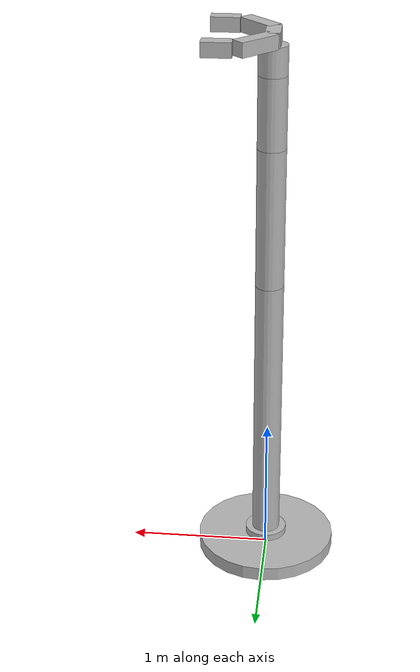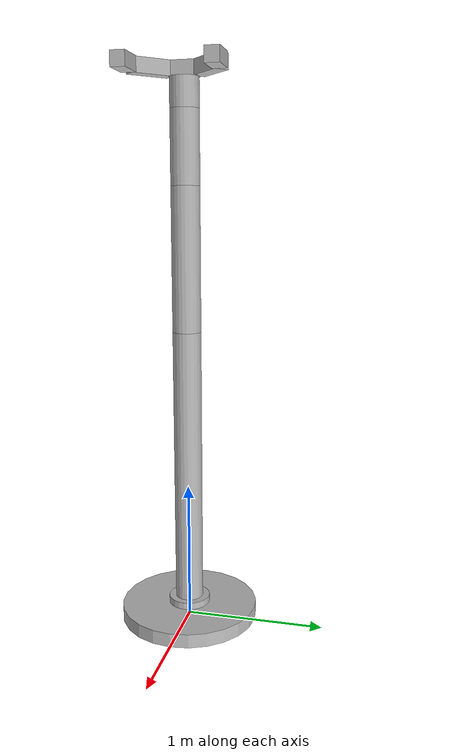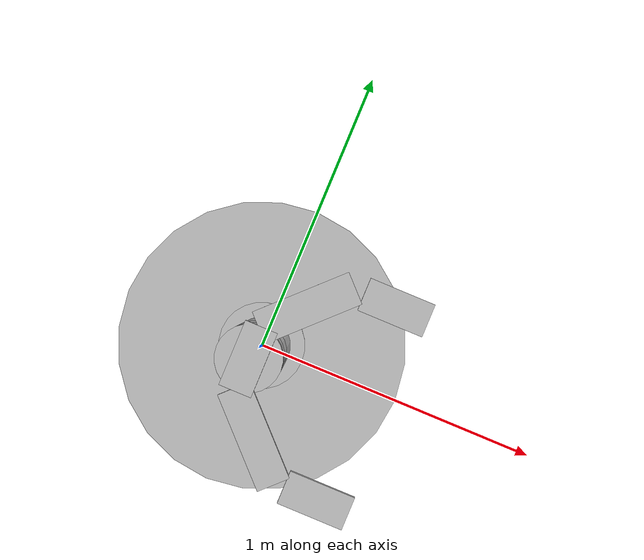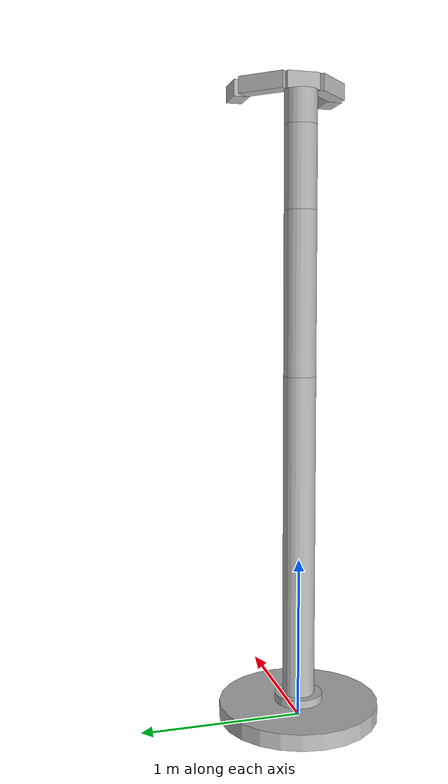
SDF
<?xml version='1.0'?>
<sdf version='1.4'>
  <model name="my_robot">
	<static>false</static>
	 <link name='base'>
      <pose>0 0 0.05 0 0 0</pose>
      <inertial>
        <mass>50.0</mass>
      </inertial>
      <collision name='collision'>
        <geometry>
          <cylinder>
            <radius>0.5</radius>
            <length>0.1</length>
          </cylinder>
        </geometry>
      </collision>

      <visual name='visual'>
        <geometry>
          <cylinder>
            <radius>0.5</radius>
            <length>0.1</length>
          </cylinder>
        </geometry>
      </visual>

   </link>
   <link name='arm_1'>
      <gravity>0</gravity>
      <pose>0 0 .125 0 0 0</pose>
      <inertial>
        <mass>0.1</mass>
      </inertial>
      <collision name='collision'>
        <geometry>
          <cylinder>
            <radius>0.15</radius>
            <length>0.05</length>
          </cylinder>
        </geometry>
        <surface>
              <friction>
                <ode>
                  <mu>0</mu>
                  <mu2>0</mu2>
                  <slip1>1.0</slip1>
                  <slip2>1.0</slip2>
                </ode>
              </friction>
            </surface>
      </collision>

      <visual name='visual'>
        <geometry>
          <cylinder>
            <radius>0.15</radius>
            <length>0.05</length>
          </cylinder>
        </geometry>
      </visual>

   </link>
    <joint type="revolute" name="base_hinge">
        <pose>0 0 0.025 0 0 0</pose>
        <child>arm_1</child>
        <parent>base</parent>
        <axis>
          <xyz>0 0 1</xyz>
          <dynamics>
            <damping>1.0</damping>
            <friction>0.3</friction>
            <limit>
              <lower>-1.0</lower>
              <upper>1.0</upper>
              <effort>40</effort>
              <velocity>1.0</velocity>
            </limit>
          </dynamics>
        </axis>
    </joint>
    <link name='arm_2'>
      <gravity>0</gravity>
      <pose>0 0 1.15 0 0 0</pose>
      <inertial>
        <mass>2.0</mass>
      </inertial>
      <collision name='collision'>
        <geometry>
          <cylinder>
            <radius>0.1</radius>
            <length>2.0</length>
          </cylinder>
        </geometry>
        <surface>
              <friction>
                <ode>
                  <mu>0</mu>
                  <mu2>0</mu2>
                  <slip1>1.0</slip1>
                  <slip2>1.0</slip2>
                </ode>
              </friction>
            </surface>
      </collision>

      <visual name='visual'>
        <geometry>
          <cylinder>
            <radius>0.1</radius>
            <length>2.0</length>
          </cylinder>
        </geometry>
      </visual>

   </link>
   <joint type="revolute" name="arm1_hinge">
        <pose>0 0 -1 0 0 0</pose>
        <child>arm_2</child>
        <parent>arm_1</parent>
        <axis>
          <xyz>1 0 0</xyz>
          <dynamics>
            <damping>1.0</damping>
            <friction>0.3</friction>
            <limit>
              <lower>-1.0</lower>
              <upper>1.0</upper>
              <effort>40</effort>
              <velocity>1.0</velocity>
            </limit>
          </dynamics>
        </axis>
    </joint>
     <link name='arm_3'>
      <gravity>0</gravity>
      <pose>0 0 2.65 0 0 0</pose>
      <inertial>
        <mass>1.0</mass>
      </inertial>
      <collision name='collision'>
        <geometry>
          <cylinder>
            <radius>0.1</radius>
            <length>1.0</length>
          </cylinder>
        </geometry>
        <surface>
              <friction>
                <ode>
                  <mu>0</mu>
                  <mu2>0</mu2>
                  <slip1>1.0</slip1>
                  <slip2>1.0</slip2>
                </ode>
              </friction>
            </surface>
      </collision>

      <visual name='visual'>
        <geometry>
          <cylinder>
            <radius>0.1</radius>
            <length>1.0</length>
          </cylinder>
        </geometry>
      </visual>

   </link>

   <joint type="revolute" name="arm2_hinge">
        <pose>0 0 -0.5 0 0 0</pose>
        <child>arm_3</child>
        <parent>arm_2</parent>
        <axis>
          <xyz>1 0 0</xyz>
          <dynamics>
            <damping>1.0</damping>
            <friction>0.3</friction>
            <limit>
              <lower>-1.0</lower>
              <upper>1.0</upper>
              <effort>40</effort>
              <velocity>1.0</velocity>
            </limit>
          </dynamics>
        </axis>
    </joint>

    <link name='arm_4'>
      <gravity>0</gravity>
      <pose>0 0 3.4 0 0 0</pose>
      <inertial>
        <mass>0.5</mass>
      </inertial>
      <collision name='collision'>
        <geometry>
          <cylinder>
            <radius>0.1</radius>
            <length>0.50</length>
          </cylinder>
        </geometry>
        <surface>
              <friction>
                <ode>
                  <mu>0</mu>
                  <mu2>0</mu2>
                  <slip1>1.0</slip1>
                  <slip2>1.0</slip2>
                </ode>
              </friction>
            </surface>
      </collision>

      <visual name='visual'>
        <geometry>
          <cylinder>
            <radius>0.1</radius>
            <length>0.50</length>
          </cylinder>
        </geometry>
      </visual>

   </link>

   <joint type="revolute" name="arm3_hinge">
        <pose>0 0 -0.25 0 0 0</pose>
        <child>arm_4</child>
        <parent>arm_3</parent>
        <axis>
          <xyz>1 0 0</xyz>
          <dynamics>
            <damping>1.0</damping>
            <friction>0.3</friction>
            <limit>
              <lower>-1.0</lower>
              <upper>1.0</upper>
              <effort>40</effort>
              <velocity>1.0</velocity>
            </limit>
          </dynamics>
        </axis>
    </joint>

    <link name='gripRotation'>
      <gravity>0</gravity>
      <pose>0 0 3.75 0 0 0</pose>
      <inertial>
        <mass>0.5</mass>
      </inertial>
      <collision name='collision'>
        <geometry>
          <cylinder>
            <radius>0.1</radius>
            <length>0.20</length>
          </cylinder>
        </geometry>
        <surface>
              <friction>
                <ode>
                  <mu>0</mu>
                  <mu2>0</mu2>
                  <slip1>1.0</slip1>
                  <slip2>1.0</slip2>
                </ode>
              </friction>
            </surface>
      </collision>

      <visual name='visual'>
        <geometry>
          <cylinder>
            <radius>0.1</radius>
            <length>0.20</length>
          </cylinder>
        </geometry>
      </visual>

   </link>

   <joint type="revolute" name="arm4_hinge">
        <pose>0 0 -0.1 0 0 0</pose>
        <child>gripRotation</child>
        <parent>arm_4</parent>
        <axis>
          <xyz>1 0 0</xyz>
           <limit>
              <lower>-0.5</lower>
              <upper>0.5</upper>
              <effort>1</effort>
          </limit>
          <dynamics>
            <damping>1.0</damping>
            <friction>0.3</friction>
            <limit>
              <lower>-1.0</lower>
              <upper>1.0</upper>
              <effort>40</effort>
              <velocity>1.0</velocity>
            </limit>
          </dynamics>
        </axis>
    </joint>

    <link name="palm">
            <gravity>0</gravity>
            <pose>0.0 0.0 3.9 0 0 0</pose>
            <inertial>
                <inertia>
                    <ixx>0.01</ixx>
                    <ixy>0</ixy>
                    <ixz>0</ixz>
                    <iyy>0.01</iyy>
                    <iyz>0</iyz>
                    <izz>0.01</izz>
                </inertia>
                <mass>0.5</mass>
            </inertial>
            <collision name="collision">
                <geometry>
                    <box>
                        <size>0.1 0.2 0.1</size>
                    </box>
                </geometry>
            </collision>
            <visual name="visual">
                <geometry>
                    <box>
                        <size>0.1 0.2 0.1</size>
                    </box>
                </geometry>
                <material>
                    <script>Gazebo/Red</script>
                </material>
            </visual>
        </link>
        <joint type="revolute" name="gripRotation_hinge">
        <pose>0 0 -0.05 0 0 0</pose>
        <child>palm</child>
        <parent>gripRotation</parent>
        <axis>
          <xyz>0 0 1</xyz>
          <dynamics>
            <damping>1.0</damping>
            <friction>0.3</friction>
            <limit>
              <lower>-1.0</lower>
              <upper>1.0</upper>
              <effort>40</effort>
              <velocity>1.0</velocity>
            </limit>
          </dynamics>
        </axis>
    </joint>
        <link name="left_finger">
            <gravity>0</gravity>
            <pose>0.1 0.2 3.9 0 0 -0.78539</pose>
            <inertial>
                <inertia>
                    <ixx>0.01</ixx>
                    <ixy>0</ixy>
                    <ixz>0</ixz>
                    <iyy>0.01</iyy>
                    <iyz>0</iyz>
                    <izz>0.01</izz>
                </inertia>
                <mass>0.1</mass>
            </inertial>
            <collision name="collision">
                <geometry>
                    <box>
                        <size>0.1 0.3 0.1</size>
                    </box>
                </geometry>
            </collision>
            <visual name="visual">
                <geometry>
                    <box>
                        <size>0.1 0.3 0.1</size>
                    </box>
                </geometry>
                <material>
                    <script>Gazebo/Blue</script>
                </material>
            </visual>
        </link>
        <joint type="revolute" name="palm_hinge_left">
          <pose>0.05 -0.15 0.05 0 0 0</pose>
          <child>left_finger</child>
          <parent>palm</parent>
          <axis>
           <xyz>0 0 -1</xyz>
           <limit>
              <lower>-0.5</lower>
              <upper>0.5</upper>
              <effort>1</effort>
          </limit>
           <dynamics>
            <damping>1.0</damping>
            <friction>0.3</friction>
            <limit>
              <lower>-1.0</lower>
              <upper>1.0</upper>
              <effort>40</effort>
              <velocity>1.0</velocity>
            </limit>
          </dynamics>
        </axis>
    </joint>
        <link name="left_finger_tip">
            <gravity>0</gravity>
            <pose>0.336 0.3 3.9 0 0 1.5707</pose>
            <inertial>
                <inertia>
                    <ixx>0.01</ixx>
                    <ixy>0</ixy>
                    <ixz>0</ixz>
                    <iyy>0.01</iyy>
                    <iyz>0</iyz>
                    <izz>0.01</izz>
                </inertia>
                <mass>0.1</mass>
            </inertial>
            <collision name="collision">
                <geometry>
                    <box>
                        <size>0.1 0.2 0.1</size>
                    </box>
                </geometry>
            </collision>
            <visual name="visual">
                <geometry>
                    <box>
                        <size>0.1 0.2 0.1</size>
                    </box>
                </geometry>
                <material>
                    <script>Gazebo/Blue</script>
                </material>
            </visual>
        </link>
        <joint type="revolute" name="left_finger_hinge">
          <pose>-0.05 0.1 0.05 0 0 0</pose>
          <child>left_finger_tip</child>
          <parent>left_finger</parent>
          <axis>
           <xyz>0 0 -1</xyz>
           <limit>
              <lower>-0.3</lower>
              <upper>0.3</upper>
              <effort>1</effort>
          </limit>
           <dynamics>
            <damping>1.0</damping>
            <friction>0.3</friction>
            <limit>
              <lower>-1.0</lower>
              <upper>1.0</upper>
              <effort>40</effort>
              <velocity>1.0</velocity>
            </limit>
          </dynamics>
        </axis>
    </joint>
        <link name="right_finger">
            <gravity>0</gravity>
            <pose>0.1 -0.2 3.9 0 0 .78539</pose>
            <inertial>
                <inertia>
                    <ixx>0.01</ixx>
                    <ixy>0</ixy>
                    <ixz>0</ixz>
                    <iyy>0.01</iyy>
                    <iyz>0</iyz>
                    <izz>0.01</izz>
                </inertia>
                <mass>0.1</mass>
            </inertial>
            <collision name="collision">
                <geometry>
                    <box>
                        <size>0.1 0.3 0.1</size>
                    </box>
                </geometry>
            </collision>
            <visual name="visual">
                <geometry>
                    <box>
                        <size>0.1 0.3 0.1</size>
                    </box>
                </geometry>
                <material>
                    <script>Gazebo/Green</script>
                </material>
            </visual>
        </link>
        <joint type="revolute" name="palm_hinge_right">
          <pose>0.05 0.15 0.05 0 0 0</pose>
          <child>right_finger</child>
          <parent>palm</parent>
          <axis>
           <xyz>0 0 1</xyz>
           <limit>
              <lower>-0.5</lower>
              <upper>0.5</upper>
              <effort>1</effort>
          </limit>
           <dynamics>
            <damping>1.0</damping>
            <friction>0.3</friction>
            <limit>
              <lower>-1.0</lower>
              <upper>1.0</upper>
              <effort>40</effort>
              <velocity>1.0</velocity>
            </limit>
          </dynamics>
        </axis>
    </joint>
        <link name="right_finger_tip">
            <gravity>0</gravity>
            <pose>0.336 -0.3 3.9 0 0 1.5707</pose>
            <inertial>
                <inertia>
                    <ixx>0.01</ixx>
                    <ixy>0</ixy>
                    <ixz>0</ixz>
                    <iyy>0.01</iyy>
                    <iyz>0</iyz>
                    <izz>0.01</izz>
                </inertia>
                <mass>0.1</mass>
            </inertial>
            <collision name="collision">
                <geometry>
                    <box>
                        <size>0.1 0.2 0.1</size>
                    </box>
                </geometry>
            </collision>
            <visual name="visual">
                <geometry>
                    <box>
                        <size>0.1 0.2 0.1</size>
                    </box>
                </geometry>
                <material>
                    <script>Gazebo/Green</script>
                </material>
            </visual>
        </link>
        <joint type="revolute" name="right_finger_hinge">
          <pose>0.05 0.1 0.05 0 0 0</pose>
          <child>right_finger_tip</child>
          <parent>right_finger</parent>
          <axis>
           <xyz>0 0 1</xyz>
           <limit>
              <lower>-0.3</lower>
              <upper>0.3</upper>
              <effort>1</effort>
          </limit>
           <dynamics>
            <damping>1.0</damping>
            <friction>0.3</friction>
            <limit>
              <lower>-1.0</lower>
              <upper>1.0</upper>
              <effort>40</effort>
              <velocity>1.0</velocity>
            </limit>
          </dynamics>
        </axis>
    </joint>

    <plugin name="arm_controller" filename="libarm_gazebo.so" />
  </model>
</sdf>
